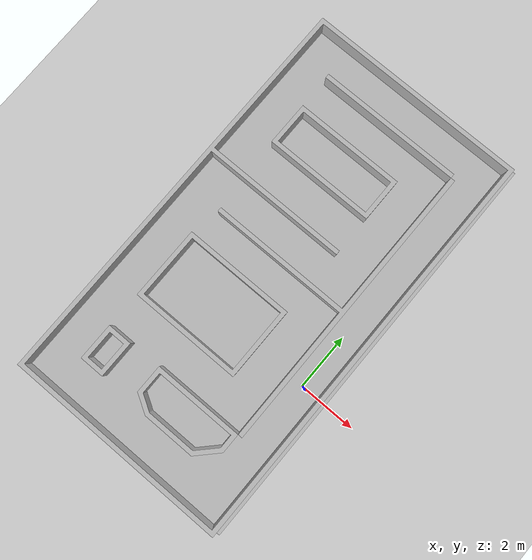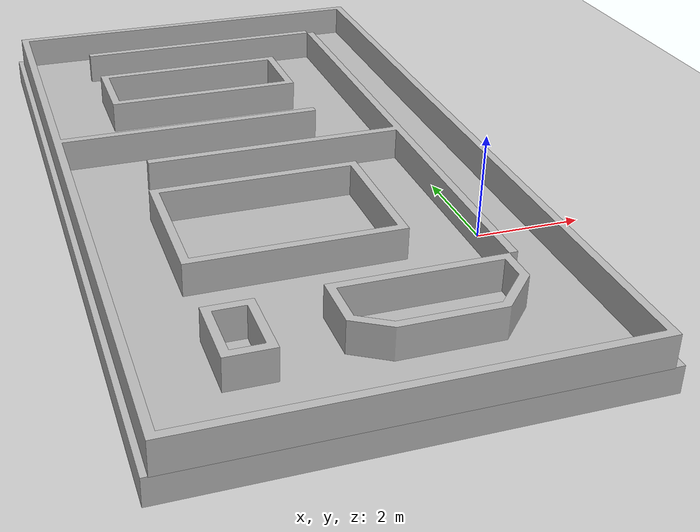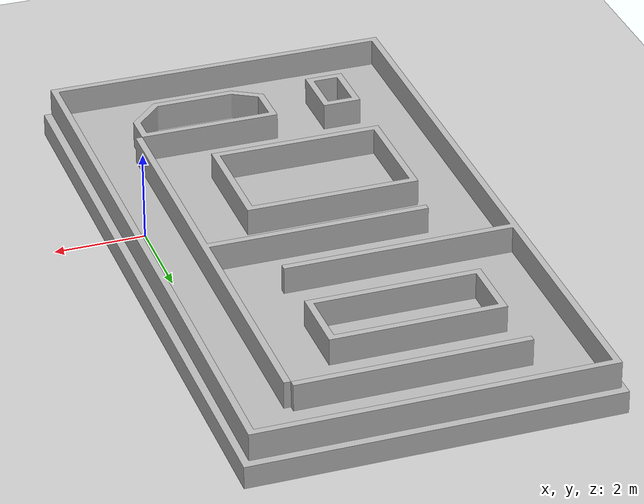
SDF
<sdf version="1.6">
 <world name="default">
  <light name="sun" type="directional">
   <pose>0 0 10 0 -0 0</pose>
   <diffuse>0.8 0.8 0.8 1</diffuse>
   <specular>0.2 0.2 0.2 1</specular>
   <attenuation>
    <range>1000</range>
    <constant>0.9</constant>
    <linear>0.01</linear>
    <quadratic>0.001</quadratic>
   </attenuation>
   <direction>-0.5 0.1 -0.9</direction>
  </light>
  <model name="ground_plane">
   <static>1</static>
   <link name="link">
    <collision name="collision">
     <geometry><plane><normal>0 0 1</normal><size>100 100</size></plane></geometry>
     <surface><friction><ode><mu>100</mu><mu2>50</mu2></ode></friction></surface>
    </collision>
    <visual name="visual">
     <cast_shadows>0</cast_shadows>
     <geometry><plane><normal>0 0 1</normal><size>100 100</size></plane></geometry>
     <material>
      <script><uri>file://media/materials/scripts/gazebo.material</uri><name>Gazebo/Grey</name></script>
     </material>
    </visual>
   </link>
  </model>
  <gravity>0 0 -9.8</gravity>
  <magnetic_field>6e-06 2.3e-05 -4.2e-05</magnetic_field>
  <atmosphere type="adiabatic"/>
  <physics name="default_physics" default="0" type="ode">
   <max_step_size>0.001</max_step_size>
   <real_time_factor>1</real_time_factor>
   <real_time_update_rate>1000</real_time_update_rate>
  </physics>
  <scene><ambient>0.4 0.4 0.4 1</ambient><background>0.7 0.7 0.7 1</background><shadows>1</shadows></scene>
  <spherical_coordinates>
   <surface_model>EARTH_WGS84</surface_model>
   <latitude_deg>0</latitude_deg>
   <longitude_deg>0</longitude_deg>
   <elevation>0</elevation>
   <heading_deg>0</heading_deg>
  </spherical_coordinates>
  <model name="test_indoor">
   <link name="link_0">
    <inertial>
     <mass>580</mass>
     <inertia>
      <ixx>101700.416687</ixx>
      <ixy>0.0000070</ixy>
      <ixz>0.0000020</ixz>
      <iyy>31000.541656</iyy>
      <iyz>0.00000</iyz>
      <izz>132500.541504</izz>
     </inertia>
    </inertial>
    <visual name="visual">
     <geometry><mesh><uri>test_indoor/meshes/base_link.dae</uri><scale>1 1 1</scale></mesh></geometry>
    </visual>
    <collision name="collision">
     <geometry><mesh><uri>test_indoor/meshes/base_link.dae</uri><scale>1 1 1</scale></mesh></geometry>
     <surface>
      <friction>
       <ode><mu>1</mu><mu2>1</mu2><fdir1>0 0 0</fdir1><slip1>0</slip1><slip2>0</slip2></ode>
       <torsional>
        <coefficient>1</coefficient>
        <patch_radius>0</patch_radius>
        <surface_radius>0</surface_radius>
        <use_patch_radius>1</use_patch_radius>
        <ode><slip>0</slip></ode>
       </torsional>
      </friction>
      <bounce><restitution_coefficient>0</restitution_coefficient><threshold>1e+06</threshold></bounce>
      <contact>
       <collide_without_contact>0</collide_without_contact>
       <collide_without_contact_bitmask>1</collide_without_contact_bitmask>
       <collide_bitmask>1</collide_bitmask>
       <ode>
        <soft_cfm>0</soft_cfm>
        <soft_erp>0.2</soft_erp>
        <kp>1e+13</kp>
        <kd>1</kd>
        <max_vel>0.01</max_vel>
        <min_depth>0</min_depth>
       </ode>
       <bullet>
        <split_impulse>1</split_impulse>
        <split_impulse_penetration_threshold>-0.01</split_impulse_penetration_threshold>
        <soft_cfm>0</soft_cfm>
        <soft_erp>0.2</soft_erp>
        <kp>1e+13</kp>
        <kd>1</kd>
       </bullet>
      </contact>
     </surface>
    </collision>
   </link>
   <link name="link_1">
    <inertial>
     <mass>1</mass>
     <inertia>
      <ixx>0.166667</ixx>
      <ixy>0</ixy>
      <ixz>0</ixz>
      <iyy>0.166667</iyy>
      <iyz>0</iyz>
      <izz>0.166667</izz>
     </inertia>
    </inertial>
    <visual name="visual">
     <geometry><mesh><uri>test_indoor/meshes/wall_link.stl</uri><scale>1 1 1</scale></mesh></geometry>
    </visual>
    <collision name="collision">
     <geometry><mesh><uri>test_indoor/meshes/wall_link.stl</uri><scale>1 1 1</scale></mesh></geometry>
     <surface>
      <friction>
       <ode><mu>1</mu><mu2>1</mu2><fdir1>0 0 0</fdir1><slip1>0</slip1><slip2>0</slip2></ode>
       <torsional>
        <coefficient>1</coefficient>
        <patch_radius>0</patch_radius>
        <surface_radius>0</surface_radius>
        <use_patch_radius>1</use_patch_radius>
        <ode><slip>0</slip></ode>
       </torsional>
      </friction>
      <bounce><restitution_coefficient>0</restitution_coefficient><threshold>1e+06</threshold></bounce>
      <contact>
       <collide_without_contact>0</collide_without_contact>
       <collide_without_contact_bitmask>1</collide_without_contact_bitmask>
       <collide_bitmask>1</collide_bitmask>
       <ode>
        <soft_cfm>0</soft_cfm>
        <soft_erp>0.2</soft_erp>
        <kp>1e+13</kp>
        <kd>1</kd>
        <max_vel>0.01</max_vel>
        <min_depth>0</min_depth>
       </ode>
       <bullet>
        <split_impulse>1</split_impulse>
        <split_impulse_penetration_threshold>-0.01</split_impulse_penetration_threshold>
        <soft_cfm>0</soft_cfm>
        <soft_erp>0.2</soft_erp>
        <kp>1e+13</kp>
        <kd>1</kd>
       </bullet>
      </contact>
     </surface>
    </collision>
   </link>
   <joint name="base_link_2_wall_link" type="fixed">
    <parent>link_0</parent>
    <child>link_1</child>
    <physics>
     <ode><limit><cfm>0</cfm><erp>0.2</erp></limit><suspension><cfm>0</cfm><erp>0.2</erp></suspension></ode>
    </physics>
   </joint>
   <static>0</static>
  </model>
 </world>
</sdf>
